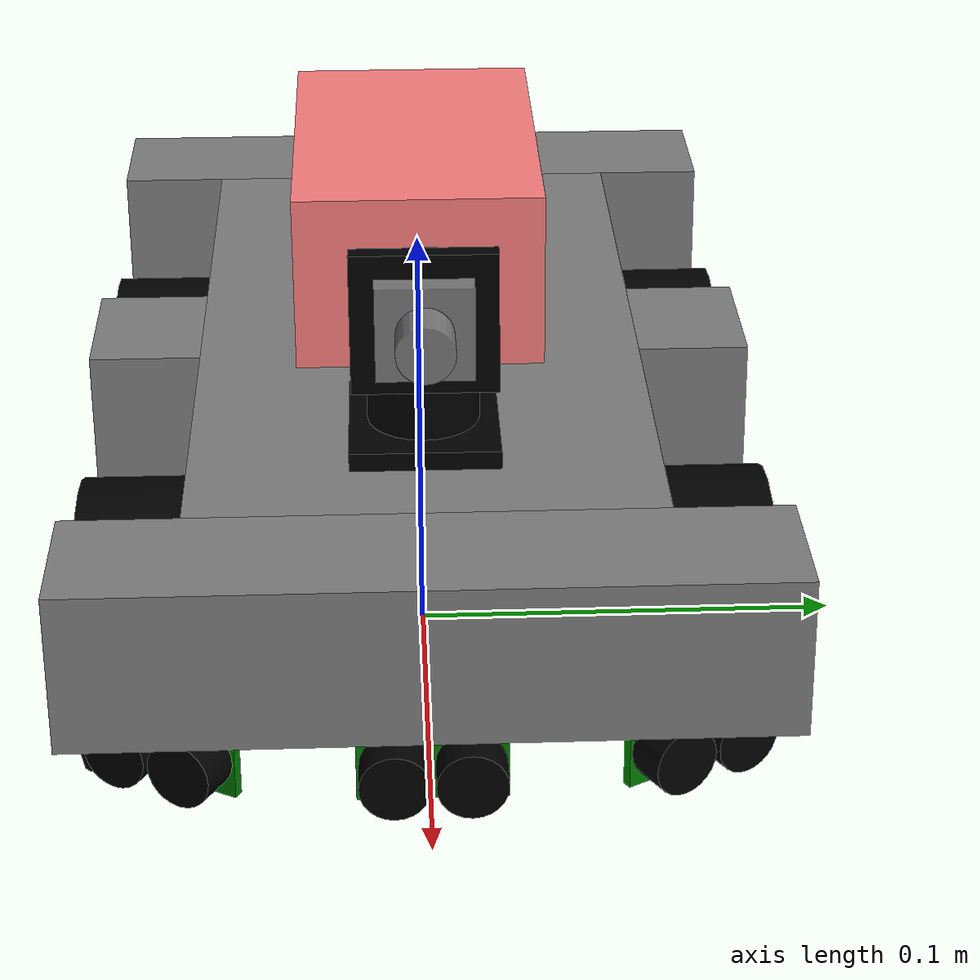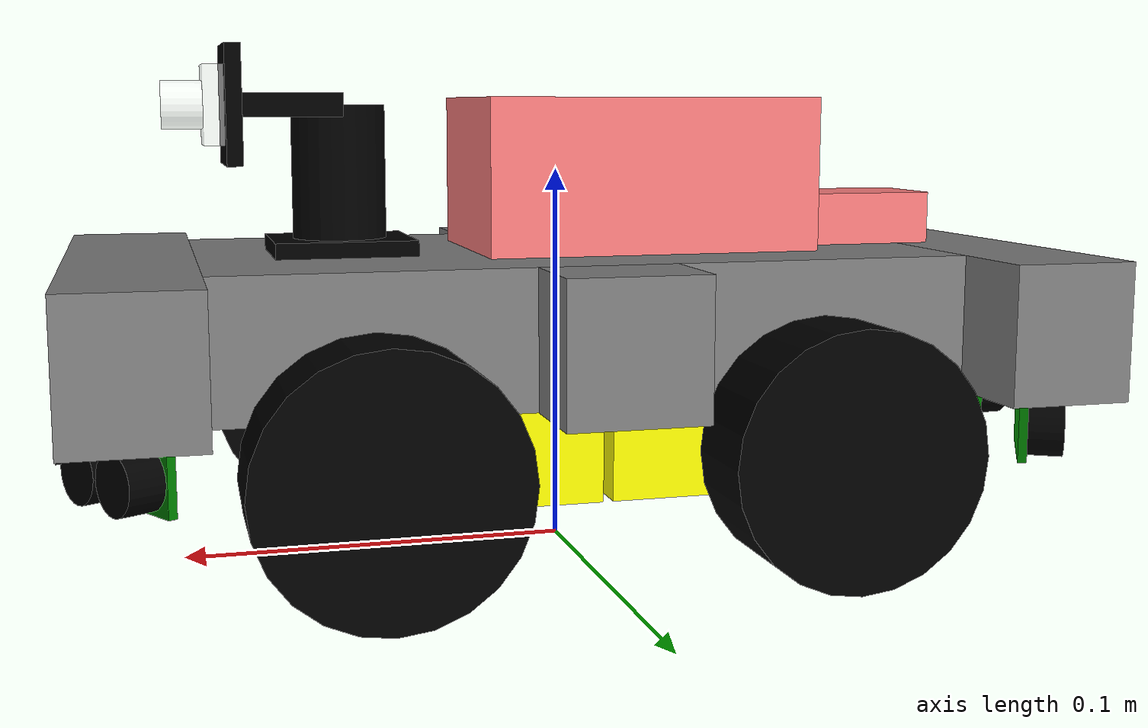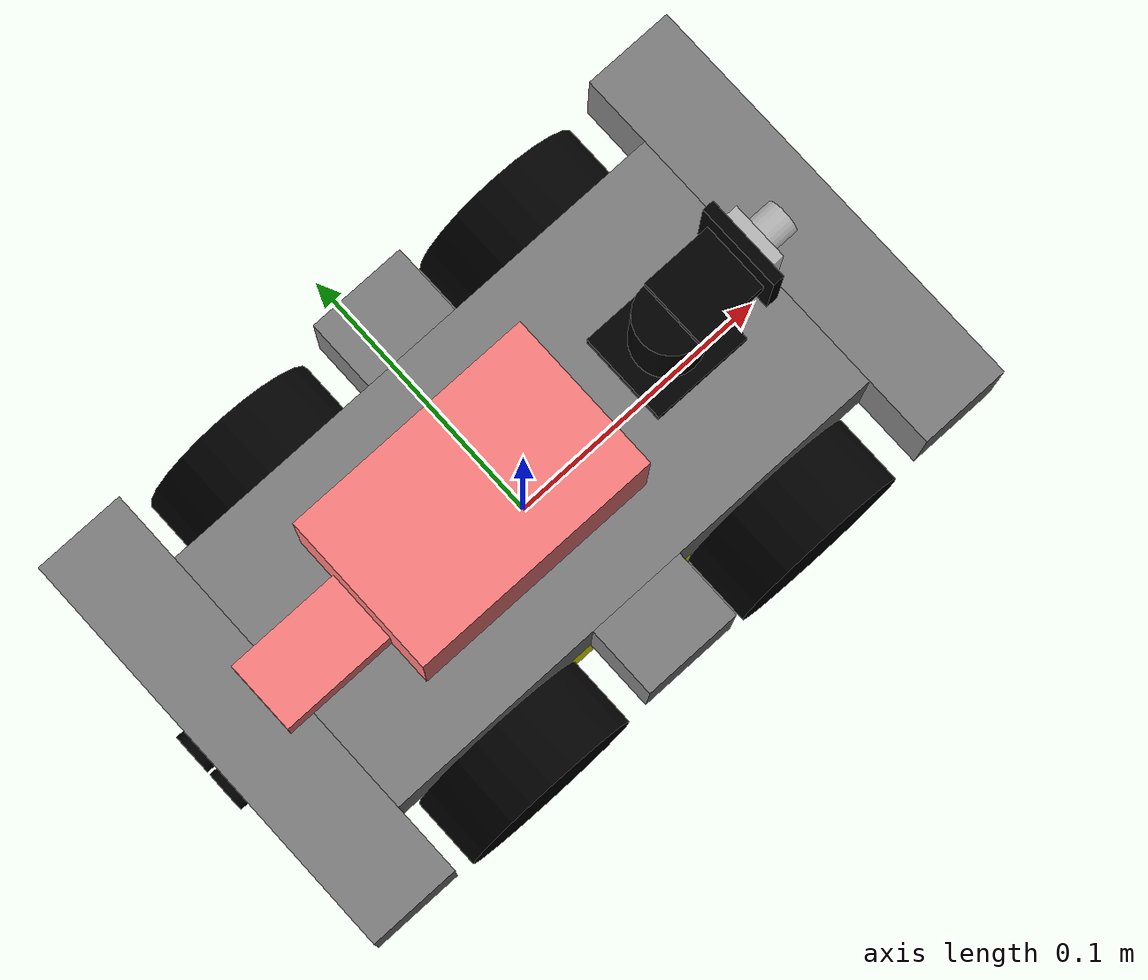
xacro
<?xml version="1.0"?>
<robot xmlns:xacro="http://www.ros.org/wiki/xacro"  name="nodebot1">

    <!-- BASE LINK -->
    <link name="base_link">
        <origin xyz="0 0 0"/>
    </link>

    <!-- CHASSIS -->
    <xacro:include filename="chassis.xacro" />

    <!-- Controls for Simulation with Gazebo -->
    <xacro:include filename="gazebo_control.xacro" />

</robot>

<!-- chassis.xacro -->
<robot xmlns:xacro="http://www.ros.org/wiki/xacro" >

     <xacro:include filename="inertial_macros.xacro"/>

     <!-- distance between chassis body and ground -->
     <xacro:property name="clearance" value="0.044" />

     <!-- dimensions of the center part of the body -->
     <xacro:property name="bodylength" value="0.190" />
     <xacro:property name="bodywidth" value="0.100" />
     <xacro:property name="bodyheight" value="0.035" />

     <!-- dimensions of a bumper -->
     <xacro:property name="bumperlength" value="0.032" />
     <xacro:property name="bumperwidth" value="0.150" />

     <!-- dimensions of a trunk -->
     <xacro:property name="trunklength" value="0.035" />
     <xacro:property name="trunkwidth" value="${(bumperwidth-bodywidth)/2}" />

     <material name="body">
          <color rgba="0.5 0.5 0.5 1.0" />
     </material>

     <!-- BODY -->
     <joint name="body_joint" type="fixed">
          <parent link="base_link"/>
          <child link="body"/>
          <origin xyz="0.0 0.0 ${clearance+bodyheight/2}"/>
     </joint>

    <link name="body">
        <visual>
            <origin rpy="0.0 0.0 0.0" xyz="0.0 0.0 0.0" />
            <geometry>
                <box size="${bodylength} ${bodywidth} ${bodyheight}" />
            </geometry>
            <material name="body" />
        </visual>
        <visual>
            <origin rpy="0.0 0.0 0.0" xyz="${(bodylength+bumperlength)/2} 0.0 0.0" />
            <geometry>
                <box size="${bumperlength} ${bumperwidth} ${bodyheight}" />
            </geometry>
            <material name="body" />
        </visual>
        <visual>
            <origin rpy="0.0 0.0 0.0" xyz="0.0 ${(bodywidth+trunkwidth)/2} 0.0" />
            <geometry>
                <box size="${trunklength} ${trunkwidth} ${bodyheight}" />
            </geometry>
            <material name="body" />
        </visual>
        <visual>
            <origin rpy="0.0 0.0 0.0" xyz="0.0 ${(-bodywidth-trunkwidth)/2} 0.0" />
            <geometry>
                <box size="${trunklength} ${trunkwidth} ${bodyheight}" />
            </geometry>
            <material name="body" />
        </visual>
        <visual>
            <origin rpy="0.0 0.0 0.0" xyz="${(-bodylength-bumperlength)/2} 0.0 0.0" />
            <geometry>
                <box size="${bumperlength} ${bumperwidth} ${bodyheight}" />
            </geometry>
            <material name="body" />
        </visual>
        <collision>
            <origin rpy="0.0 0.0 0.0" xyz="0.0 0.0 0.0" />
            <geometry>
                <box size="${bodylength+2*bumperlength} ${bumperwidth} ${bodyheight}" />
            </geometry>
        </collision>
        <xacro:inertial_box mass="0.540" x="${bodylength+2*bumperlength}" y="${bumperwidth}" z="${bodyheight}">
            <origin xyz="0 0 0" rpy="0 0 0"/>
        </xacro:inertial_box>
    </link>

    <gazebo reference="body">
        <material>Gazebo/White</material>
    </gazebo>

     <!-- DRIVE_UNITS -->
     <xacro:include filename="drive_unit.xacro" />
     <!-- front left -->
     <xacro:drive_joint prefix="front_left" base="body" rotateX="0" rotateY="0" rotateZ="0" moveX="${(bodylength+trunklength)/4}" moveY="${bodywidth/2}" moveZ="-${bodyheight/2}" />
     <xacro:drive_unit prefix="front_left" direction="1" />
     <!-- front right -->
     <xacro:drive_joint prefix="front_right" base="body" rotateX="${pi}" rotateY="0" rotateZ="0" moveX="${(bodylength+trunklength)/4}" moveY="-${bodywidth/2}" moveZ="-${bodyheight/2}" />
     <xacro:drive_unit prefix="front_right" direction="-1" />
     <!-- rear left -->
     <xacro:drive_joint prefix="rear_left" base="body" rotateX="${pi}" rotateY="0" rotateZ="${pi}" moveX="-${(bodylength+trunklength)/4}" moveY="${bodywidth/2}" moveZ="-${bodyheight/2}" />
     <xacro:drive_unit prefix="rear_left" direction="1" />
     <!-- rear right -->
      <xacro:drive_joint prefix="rear_right" base="body" rotateX="0" rotateY="0" rotateZ="${pi}" moveX="-${(bodylength+trunklength)/4}" moveY="-${bodywidth/2}" moveZ="-${bodyheight/2}" />
     <xacro:drive_unit prefix="rear_right" direction="-1" />

    <!-- PI-BOX -->
    <joint name="pi_box_joint" type="fixed">
        <parent link="body" />
        <child link="pi_box" />
        <origin xyz="-0.020 0.0 ${bodyheight/2}" />
    </joint>
    <xacro:include filename="pi_box.xacro" />

    <!-- VOLTAGE BOX -->
    <joint name="base_to_vltg_box" type="fixed">
        <parent link="body" />
        <child link="vltg_box" />
        <origin xyz="-0.084 0.0 ${bodyheight/2}" />
    </joint>
    <xacro:include filename="vltg_box.xacro" />

    <!-- ULTRASONIC SENSORS -->
    <xacro:include filename="rcw0001_sensor.xacro" />
    <xacro:rcw0001_joint prefix="front_left" base="body" rotateZ="${pi/6}" moveX="0.115" moveY="0.055" moveZ="-${bodyheight/2}" />
    <xacro:rcw0001 prefix="front_left" />
    <xacro:rcw0001_joint prefix="front_center" base="body" rotateZ="0" moveX="0.125" moveY="0" moveZ="-${bodyheight/2}" />
    <xacro:rcw0001 prefix="front_center" />
    <xacro:rcw0001_joint prefix="front_right" base="body" rotateZ="${-pi/6}" moveX="0.115" moveY="-0.055" moveZ="-${bodyheight/2}" />
    <xacro:rcw0001 prefix="front_right" />
    <xacro:rcw0001_joint prefix="rear_left" base="body" rotateZ="${pi-pi/6}" moveX="-0.115" moveY="0.055" moveZ="-${bodyheight/2}" />
    <xacro:rcw0001 prefix="rear_left" />
    <xacro:rcw0001_joint prefix="rear_center" base="body" rotateZ="${pi}" moveX="-0.125" moveY="0" moveZ="-${bodyheight/2}" />
    <xacro:rcw0001 prefix="rear_center" />
    <xacro:rcw0001_joint prefix="rear_right" base="body" rotateZ="${pi+pi/6}" moveX="-0.115" moveY="-0.055" moveZ="-${bodyheight/2}" />
    <xacro:rcw0001 prefix="rear_right" />

    <!-- PAN-TILT CAMERA -->
    <joint name="base_to_pan_tilt_cam" type="fixed">
        <parent link="body" />
        <child link="pan_tilt_cam_base" />
        <origin xyz="0.058 0.0 ${bodyheight/2}" />
    </joint>
    <xacro:include filename="pan_tilt_cam.xacro" />

</robot>

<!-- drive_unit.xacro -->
<robot xmlns:xacro="http://www.ros.org/wiki/xacro">

    <xacro:include filename="inertial_macros.xacro"/>

    <!-- dimensions of a motor -->
    <xacro:property name="motorlength" value="0.066" />
    <xacro:property name="motorwidth" value="0.018" />
    <xacro:property name="motorheight" value="0.023" />

    <!-- dimensions of a wheel -->
    <xacro:property name="wheelwidth" value="0.025" />
    <xacro:property name="wheeldiameter" value="0.065" />

    <material name="motorbox">
        <color rgba="1.0 1.0 0.0 1.0" />
    </material>

    <material name="wheel">
        <color rgba="0.0 0.0 0.0 1.0" />
    </material>

    <!-- Macro for joints between base and drive_unit -->
    <xacro:macro name="drive_joint" params="base prefix rotateX rotateY rotateZ moveX moveY moveZ">
        <joint name="${prefix}_drive_unit_joinz" type="fixed">
            <parent link="${base}" />
            <child link="${prefix}_motorbox" />
            <origin rpy="${rotateX} ${rotateY} ${rotateZ}" xyz="${moveX} ${moveY} ${moveZ-motorheight/2}" />
        </joint>
    </xacro:macro>

    <!-- Macro for drive_unit including motor, gearbox, wheel -->
    <xacro:macro name="drive_unit" params="prefix direction">
        <link name="${prefix}_motorbox">
            <visual>
                <origin xyz="${-motorlength/3} ${-motorwidth/2} 0" rpy="0 0 0"/>
                <geometry>
                    <box size="${motorlength} ${motorwidth} ${motorheight}" />
                </geometry>
                <material name="motorbox" />
            </visual>
            <collision>
                <origin xyz="${-motorlength/3} ${-motorwidth/2} 0" rpy="0 0 0"/>
                <geometry>
                    <box size="${motorlength} ${motorwidth} ${motorheight}" />
                </geometry>
            </collision>
        <xacro:inertial_box mass="0.035" x="${motorlength}" y="${motorwidth}" z="${motorheight}">
            <origin xyz="0 0 0" rpy="0 0 0"/>
        </xacro:inertial_box>
        </link>

        <gazebo reference="${prefix}_motorbox">
            <material>Gazebo/Yellow</material>
        </gazebo>

        <joint name="${prefix}_wheel_joint" type="continuous">
            <parent link="${prefix}_motorbox" />
            <child link="${prefix}_wheel" />
            <origin rpy="${-pi/2} 0.0 0.0" xyz="0.0 ${wheelwidth/2} 0.0" />
            <axis rpy="0.0 0.0 0.0" xyz="0.0 0.0 ${direction}" />
        </joint>

        <link name="${prefix}_wheel">
            <visual>
                <geometry>
                    <cylinder radius="${wheeldiameter/2}" length="${wheelwidth}" />
                </geometry>
                <material name="wheel" />
            </visual>
            <collision>
                <geometry>
                    <cylinder radius="${wheeldiameter/2}" length="${wheelwidth}" />
                </geometry>
            </collision>
            <xacro:inertial_cylinder mass="0.010" length="${wheelwidth}" radius="${wheeldiameter/2}">
                <origin xyz="0 0 0" rpy="0 0 0"/>
            </xacro:inertial_cylinder>
        </link>

        <gazebo reference="${prefix}_wheel">
            <material>Gazebo/Black</material>
            <mu1 value="0.5"/>
            <mu2 value="0.5"/>
            <kp value="1000000.0"/>
            <kd value="1.0"/>
        </gazebo>

    </xacro:macro>

</robot>

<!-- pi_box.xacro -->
<robot xmlns:xacro="http://www.ros.org/wiki/xacro">

    <!-- dimensions of the pi box -->
    <xacro:property name="pilength" value="0.088" />
    <xacro:property name="piwidth" value="0.056" />
    <xacro:property name="piheight" value="0.040" />

    <material name="pi-box">
        <color rgba="1.0 0.5 0.5 1.0" />
    </material>

    <link name="pi_box">
        <visual>
            <origin xyz="0.0 0.0 ${piheight/2}" />
            <geometry>
                <box size="${pilength} ${piwidth} ${piheight}" />
            </geometry>
            <material name="pi-box" />
        </visual>
        <collision>
            <origin xyz="0.0 0.0 ${piheight/2}" />
            <geometry>
                <box size="${pilength} ${piwidth} ${piheight}" />
            </geometry>
        </collision>
        <xacro:inertial_box mass="0.100" x="${pilength}" y="${piwidth}" z="${piheight}">
            <origin xyz="0 0 0" rpy="0 0 0"/>
        </xacro:inertial_box>
    </link>

    <gazebo reference="pi_box">
        <material>Gazebo/Blue</material>
    </gazebo>

</robot>

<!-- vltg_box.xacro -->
<robot xmlns:xacro="http://www.ros.org/wiki/xacro" >

    <!-- dimensions of the vltg box -->
    <xacro:property name="vltglength" value="0.040" />
    <xacro:property name="vltgwidth" value="0.025" />
    <xacro:property name="vltgheight" value="0.014" />

    <material name="vltg-box">
        <color rgba="1.0 0.5 0.5 1.0" />
    </material>

    <link name="vltg_box">
        <visual>
            <origin xyz="0.0 0.0 ${vltgheight/2}" />
            <geometry>
                <box size="${vltglength} ${vltgwidth} ${vltgheight}" />
            </geometry>
            <material name="vltg-box" />
        </visual>
        <collision>
            <origin xyz="0.0 0.0 ${vltgheight/2}" />
            <geometry>
                <box size="${vltglength} ${vltgwidth} ${vltgheight}" />
            </geometry>
        </collision>
        <xacro:inertial_box mass="0.009" x="${vltglength}" y="${vltgwidth}" z="${vltgheight}">
            <origin xyz="0 0 0" rpy="0 0 0"/>
        </xacro:inertial_box>
    </link>

    <gazebo reference="vltg_box">
        <material>Gazebo/Blue</material>
    </gazebo>

</robot>

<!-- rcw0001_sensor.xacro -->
<robot xmlns:xacro="http://www.ros.org/wiki/xacro">

    <!-- dimensions of the sensor box -->
    <xacro:property name="rcwlength" value="0.011" />
    <xacro:property name="rcwwidth" value="0.031" />
    <xacro:property name="rcwheight" value="0.016" />

    <material name="rcw0001-plane">
        <color rgba="0.0 0.5 0.0 1.0" />
    </material>

    <material name="rcw0001-sensors">
        <color rgba="0.0 0.0 0.0 1.0" />
    </material>

    <xacro:macro name="rcw0001_joint" params="prefix base rotateZ moveX moveY moveZ">
        <joint name="${prefix}_rcw0001" type="fixed">
            <parent link="${base}" />
            <child link="${prefix}_rcw0001" />
            <origin rpy="0.0 0.0 ${rotateZ}" xyz="${moveX} ${moveY} ${moveZ-rcwheight/2}" />
        </joint>
    </xacro:macro>

    <xacro:macro name="rcw0001" params="prefix">
        <link name="${prefix}_rcw0001">
            <visual>
                <origin xyz="-${rcwlength*2/5} 0.0 0.0" />
                <geometry>
                    <box size="${rcwlength/5} ${rcwwidth} ${rcwheight}" />
                </geometry>
                <material name="rcw0001-plane" />
            </visual>
            <visual>
                <origin rpy="0.0 ${pi/2} 0.0" xyz="${rcwlength/10} ${rcwwidth/4} 0.0" />
                <geometry>
                    <cylinder radius="${rcwheight/2.2}" length="${rcwlength*4/5}" />
                </geometry>
                <material name="rcw0001-sensors" />
            </visual>
            <visual>
                <origin rpy="0.0 ${pi/2} 0.0" xyz="${rcwlength/10} -${rcwwidth/4} 0.0" />
                <geometry>
                    <cylinder radius="${rcwheight/2.2}" length="${rcwlength*4/5}" />
                </geometry>
                <material name="rcw0001-sensors" />
            </visual>
            <collision>
                <origin xyz="0.0 0.0 0.0" />
                <geometry>
                    <box size="${rcwlength} ${rcwwidth} ${rcwheight}" />
                </geometry>
            </collision>
            <xacro:inertial_box mass="0.004" x="${rcwlength}" y="${rcwwidth}" z="${rcwheight}">
                <origin xyz="0 0 0" rpy="0 0 0"/>
            </xacro:inertial_box>
        </link>

        <gazebo reference="${prefix}_rcw0001">
            <material>Gazebo/Green</material>
        </gazebo>

    </xacro:macro>

</robot>

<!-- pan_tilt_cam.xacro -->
<robot xmlns:xacro="http://www.ros.org/wiki/xacro">

    <!-- dimensions of the pan tilt cam -->
    <xacro:property name="base_length" value="0.036" />
    <xacro:property name="base_width" value="0.032" />
    <xacro:property name="base_height" value="0.004" />
    <xacro:property name="v_armlength" value="0.038" />
    <xacro:property name="v_armdiameter" value="0.024" />
    <xacro:property name="h_armlength" value="0.027" />
    <xacro:property name="h_armheight" value="0.006" />
    <xacro:property name="cam_plate_length" value="0.004" />
    <xacro:property name="cam_plate_width" value="0.030" />
    <xacro:property name="cam_plate_height" value="0.030" />

    <material name="pan-tilt-arm">
        <color rgba="0.0 0.0 0.0 1.0" />
    </material>

    <link name="pan_tilt_cam_base">
        <visual>
            <origin xyz="0.0 0.0 ${base_height/2}" />
            <geometry>
                <box size="${base_length} ${base_width} ${base_height}" />
            </geometry>
            <material name="pan-tilt-arm" />
        </visual>
        <collision>
            <origin xyz="0.0 0.0 ${base_height/2}" />
            <geometry>
                <box size="${base_length} ${base_width} ${base_height}" />
            </geometry>
        </collision>
        <xacro:inertial_box mass="0.002" x="${base_length}" y="${base_width}" z="${base_height}">
            <origin xyz="0 0 0" rpy="0 0 0"/>
        </xacro:inertial_box>
    </link>

    <gazebo reference="pan_tilt_cam_base">
        <material>Gazebo/Black</material>
    </gazebo>

    <joint name="vertical_arm_joint" type="revolute">
        <parent link="pan_tilt_cam_base" />
        <child link="vertical_arm" />
        <origin rpy="0.0 0.0 0.0" xyz="0.0 0.0 ${v_armlength/2}" />
        <axis rpy="0.0 0.0 0.0" xyz="0.0 0.0 -1" />
        <limit lower="${-pi/3}" upper="${pi/3}" velocity="100" effort="100"/>
    </joint>

    <link name="vertical_arm">
        <visual>
            <geometry>
                <cylinder radius="${v_armdiameter/2}" length="${v_armlength}" />
            </geometry>
            <material name="pan-tilt-arm" />
        </visual>
        <collision>
            <geometry>
                <cylinder radius="${v_armdiameter/2}" length="${v_armlength}" />
            </geometry>
        </collision>
        <xacro:inertial_cylinder mass="0.001" length="${v_armlength}" radius="${v_armdiameter/2}">
            <origin xyz="0 0 0" rpy="0 0 0"/>
        </xacro:inertial_cylinder>
    </link>

    <gazebo reference="vertical_arm">
        <material>Gazebo/Black</material>
    </gazebo>

    <joint name="horizontal_arm_joint" type="fixed">
        <parent link="vertical_arm" />
        <child link="horizontal_arm" />
        <origin rpy="0.0 0.0 0.0" xyz="${h_armlength/2} 0.0 ${v_armlength/2}" />
    </joint>

    <link name="horizontal_arm">
        <visual>
            <origin xyz="0.0 0.0 0.0" />
            <geometry>
                <box size="${h_armlength} ${v_armdiameter} ${h_armheight}" />
            </geometry>
            <material name="pan-tilt-arm" />
        </visual>
        <collision>
            <origin xyz="0.0 0.0 ${base_height/2}" />
            <geometry>
                <box size="${h_armlength} ${v_armdiameter} ${h_armheight}" />
            </geometry>
        </collision>
        <xacro:inertial_box mass="0.002" x="${h_armlength}" y="${v_armdiameter}" z="${h_armheight}">
            <origin xyz="0 0 0" rpy="0 0 0"/>
        </xacro:inertial_box>
    </link>

    <gazebo reference="horizontal_arm">
        <material>Gazebo/Black</material>
    </gazebo>

    <joint name="cam_plate_joint" type="revolute">
        <parent link="horizontal_arm" />
        <child link="cam_plate" />
        <origin rpy="0.0 0.0 0.0" xyz="${h_armlength/2} 0.0 0.0" />
        <axis rpy="0.0 0.0 0.0" xyz="0.0 -1 0.0" />
        <limit lower="${-pi/12}" upper="${5*pi/12}" velocity="100" effort="100"/>
    </joint>

    <link name="cam_plate">
        <visual>
            <origin xyz="0.0 0.0 0.0" />
            <geometry>
                <box size="${cam_plate_length} ${cam_plate_width} ${cam_plate_height}" />
            </geometry>
            <material name="pan-tilt-arm" />
        </visual>
        <collision>
            <origin xyz="0.0 0.0 0.0" />
            <geometry>
                <box size="${cam_plate_length} ${cam_plate_width} ${cam_plate_height}" />
            </geometry>
        </collision>
        <xacro:inertial_box mass="0.001" x="${cam_plate_length}" y="${cam_plate_width}" z="${cam_plate_height}">
            <origin xyz="0 0 0" rpy="0 0 0"/>
        </xacro:inertial_box>
    </link>

    <gazebo reference="cam_plate">
        <material>Gazebo/Black</material>
    </gazebo>

    <joint name="camera_joint" type="fixed">
        <parent link="cam_plate" />
        <child link="camera" />
        <origin rpy="0.0 0.0 0.0" xyz="${cam_plate_length/2} 0.0 0.0" />
    </joint>
    <xacro:include filename="camera.xacro" />

</robot>

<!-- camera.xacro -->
<robot xmlns:xacro="http://www.ros.org/wiki/xacro">

    <!-- dimensions of the camera -->
    <xacro:property name="cam_length" value="0.005" />
    <xacro:property name="cam_width" value="0.02" />
    <xacro:property name="cam_height" value="0.02" />
    <xacro:property name="lense_length" value="0.01" />
    <xacro:property name="lense_diameter" value="0.012" />

    <material name="cam">
        <color rgba="1.0 1.0 1.0 0.5" />
    </material>

    <link name="camera">
        <visual>
            <origin xyz="${cam_length/2} 0 0" rpy="0 0 0"/>
            <geometry>
                <box size="${cam_length} ${cam_width} ${cam_height}" />
            </geometry>
            <material name="cam" />
        </visual>
        <visual>
            <origin xyz="${lense_length/2+cam_length} 0 0" rpy="0 ${pi/2} 0"/>
            <geometry>
                <cylinder length="${lense_length}" radius="${lense_diameter/2}" />
            </geometry>
            <material name="cam" />
        </visual>
        <collision>
            <origin xyz="${cam_length/2+0.001} 0 0" rpy="0 0 0"/>
            <geometry>
                <box size="${cam_length/2+0.002} ${cam_width} ${cam_height}" />
            </geometry>
        </collision>
        <xacro:inertial_box mass="0.005" x="${cam_length/2+0.002}" y="${cam_width}" z="${cam_height}">
            <origin xyz="0.0 0 0" rpy="0 0 0"/>
        </xacro:inertial_box>
    </link>

    <gazebo reference="camera">
        <material>Gazebo/Black</material>
    </gazebo>

</robot>
